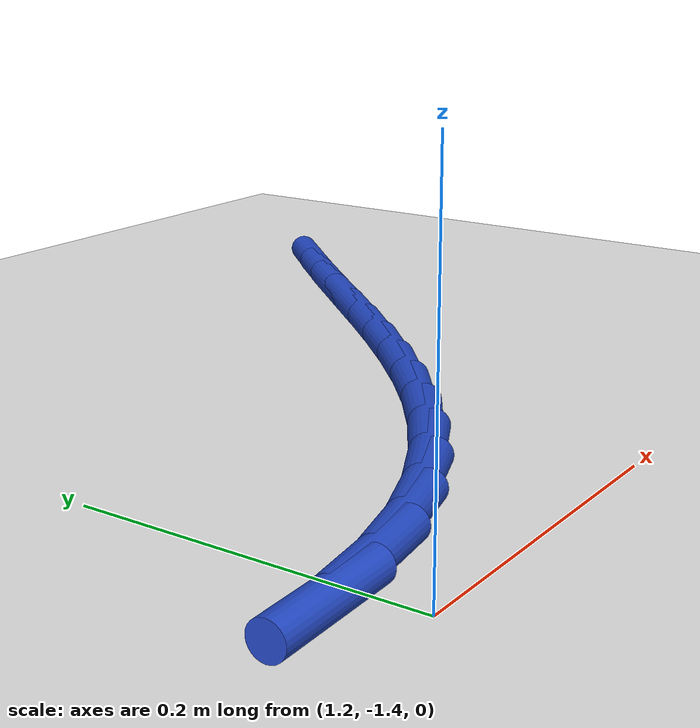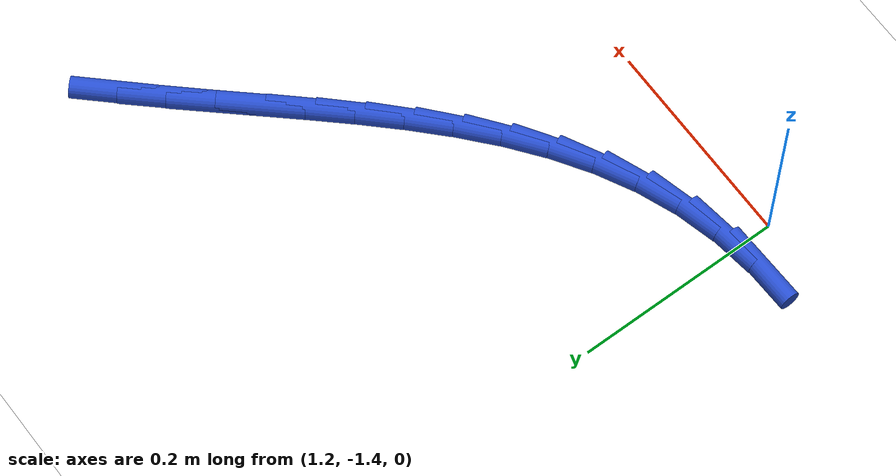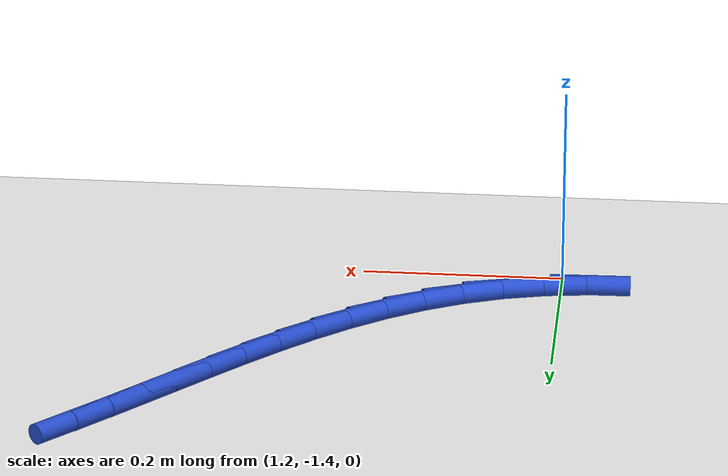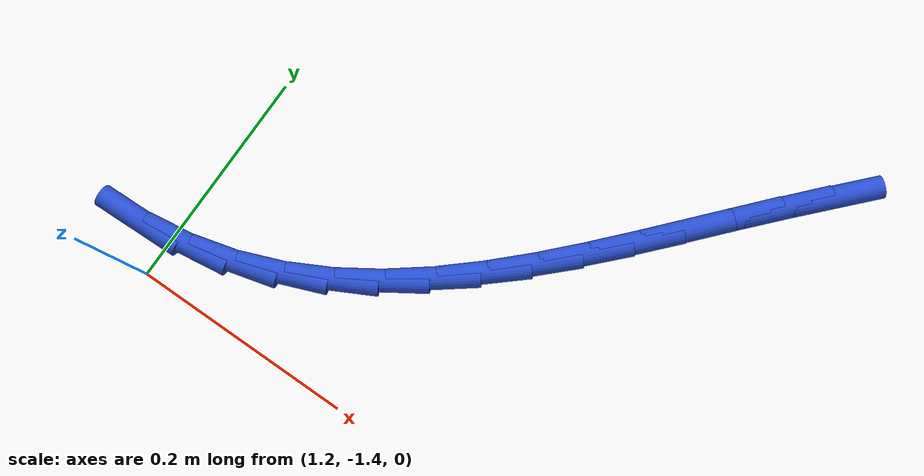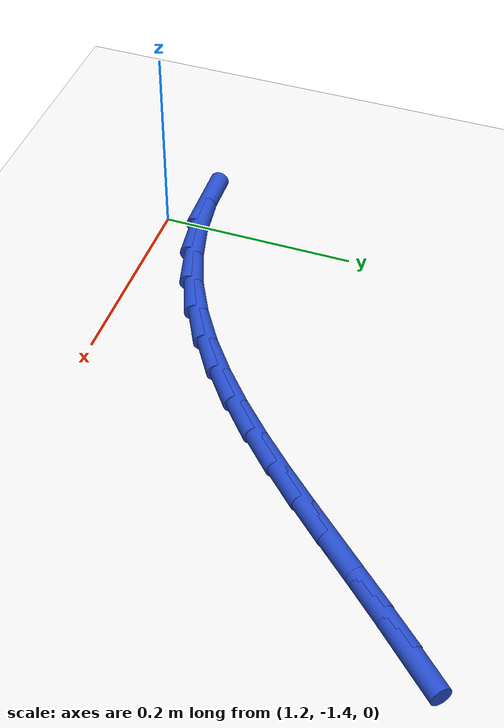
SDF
<sdf version="1.6">
 <world name="default">
  <model name="ground_plane">
   <static>1</static>
   <link name="link">
    <collision name="collision">
     <geometry><plane><normal>0 0 1</normal><size>100 100</size></plane></geometry>
     <surface><friction><ode><mu>100</mu><mu2>50</mu2></ode></friction></surface>
    </collision>
    <visual name="visual">
     <cast_shadows>0</cast_shadows>
     <geometry><plane><normal>0 0 1</normal><size>100 100</size></plane></geometry>
     <material>
      <script><uri>file://media/materials/scripts/gazebo.material</uri><name>Gazebo/WhiteGlow</name></script>
     </material>
    </visual>
   </link>
  </model>
  <model name="line">
   <link name="link_121">
    <pose>1.644661011423778 -1.0122961781609008 0.01 0 1.57 0.81928160764692</pose>
    <collision name="collision">
     <geometry><cylinder><radius>0.01</radius><length>0.08</length></cylinder></geometry>
    </collision>
    <visual name="visual">
     <material>
      <script><name>Gazebo/Blue</name><uri>file://media/materials/scripts/gazebo.material</uri></script>
     </material>
     <geometry><cylinder><radius>0.01</radius><length>0.08</length></cylinder></geometry>
    </visual>
   </link>
   <link name="link_122">
    <pose>1.6151971620273249 -1.0438275469231344 0.01 0 1.57 0.8330358349825612</pose>
    <collision name="collision">
     <geometry><cylinder><radius>0.01</radius><length>0.08</length></cylinder></geometry>
    </collision>
    <visual name="visual">
     <material>
      <script><name>Gazebo/Blue</name><uri>file://media/materials/scripts/gazebo.material</uri></script>
     </material>
     <geometry><cylinder><radius>0.01</radius><length>0.08</length></cylinder></geometry>
    </visual>
   </link>
   <link name="link_123">
    <pose>1.5859121770615907 -1.0760445622483499 0.01 0 1.57 0.8428960130972724</pose>
    <collision name="collision">
     <geometry><cylinder><radius>0.01</radius><length>0.08</length></cylinder></geometry>
    </collision>
    <visual name="visual">
     <material>
      <script><name>Gazebo/Blue</name><uri>file://media/materials/scripts/gazebo.material</uri></script>
     </material>
     <geometry><cylinder><radius>0.01</radius><length>0.08</length></cylinder></geometry>
    </visual>
   </link>
   <link name="link_124">
    <pose>1.5566816892599658 -1.1088456690457502 0.01 0 1.57 0.84249878439525</pose>
    <collision name="collision">
     <geometry><cylinder><radius>0.01</radius><length>0.08</length></cylinder></geometry>
    </collision>
    <visual name="visual">
     <material>
      <script><name>Gazebo/Blue</name><uri>file://media/materials/scripts/gazebo.material</uri></script>
     </material>
     <geometry><cylinder><radius>0.01</radius><length>0.08</length></cylinder></geometry>
    </visual>
   </link>
   <link name="link_125">
    <pose>1.5272870702102406 -1.1418045884846766 0.01 0 1.57 0.8301137871013893</pose>
    <collision name="collision">
     <geometry><cylinder><radius>0.01</radius><length>0.08</length></cylinder></geometry>
    </collision>
    <visual name="visual">
     <material>
      <script><name>Gazebo/Blue</name><uri>file://media/materials/scripts/gazebo.material</uri></script>
     </material>
     <geometry><cylinder><radius>0.01</radius><length>0.08</length></cylinder></geometry>
    </visual>
   </link>
   <link name="link_126">
    <pose>1.4974824922735226 -1.1744013421029407 0.01 0 1.57 0.8055680688839614</pose>
    <collision name="collision">
     <geometry><cylinder><radius>0.01</radius><length>0.08</length></cylinder></geometry>
    </collision>
    <visual name="visual">
     <material>
      <script><name>Gazebo/Blue</name><uri>file://media/materials/scripts/gazebo.material</uri></script>
     </material>
     <geometry><cylinder><radius>0.01</radius><length>0.08</length></cylinder></geometry>
    </visual>
   </link>
   <link name="link_127">
    <pose>1.4670221252086633 -1.2061159424737422 0.01 0 1.57 0.7683826000340719</pose>
    <collision name="collision">
     <geometry><cylinder><radius>0.01</radius><length>0.08</length></cylinder></geometry>
    </collision>
    <visual name="visual">
     <material>
      <script><name>Gazebo/Blue</name><uri>file://media/materials/scripts/gazebo.material</uri></script>
     </material>
     <geometry><cylinder><radius>0.01</radius><length>0.08</length></cylinder></geometry>
    </visual>
   </link>
   <link name="link_128">
    <pose>1.4356601387745145 -1.2364284021702836 0.01 0 1.57 0.7178635831809987</pose>
    <collision name="collision">
     <geometry><cylinder><radius>0.01</radius><length>0.08</length></cylinder></geometry>
    </collision>
    <visual name="visual">
     <material>
      <script><name>Gazebo/Blue</name><uri>file://media/materials/scripts/gazebo.material</uri></script>
     </material>
     <geometry><cylinder><radius>0.01</radius><length>0.08</length></cylinder></geometry>
    </visual>
   </link>
   <link name="link_129">
    <pose>1.403150702729927 -1.2648187337657661 0.01 0 1.57 0.6532673138674373</pose>
    <collision name="collision">
     <geometry><cylinder><radius>0.01</radius><length>0.08</length></cylinder></geometry>
    </collision>
    <visual name="visual">
     <material>
      <script><name>Gazebo/Blue</name><uri>file://media/materials/scripts/gazebo.material</uri></script>
     </material>
     <geometry><cylinder><radius>0.01</radius><length>0.08</length></cylinder></geometry>
    </visual>
   </link>
   <link name="link_130">
    <pose>1.3692479868337526 -1.290766949833391 0.01 0 1.57 0.5740759508122095</pose>
    <collision name="collision">
     <geometry><cylinder><radius>0.01</radius><length>0.08</length></cylinder></geometry>
    </collision>
    <visual name="visual">
     <material>
      <script><name>Gazebo/Blue</name><uri>file://media/materials/scripts/gazebo.material</uri></script>
     </material>
     <geometry><cylinder><radius>0.01</radius><length>0.08</length></cylinder></geometry>
    </visual>
   </link>
   <link name="link_131">
    <pose>1.3337061608448413 -1.3137530629463596 0.01 0 1.57 0.48040441377834575</pose>
    <collision name="collision">
     <geometry><cylinder><radius>0.01</radius><length>0.08</length></cylinder></geometry>
    </collision>
    <visual name="visual">
     <material>
      <script><name>Gazebo/Blue</name><uri>file://media/materials/scripts/gazebo.material</uri></script>
     </material>
     <geometry><cylinder><radius>0.01</radius><length>0.08</length></cylinder></geometry>
    </visual>
   </link>
   <link name="link_132">
    <pose>1.2962793945220465 -1.333257085677874 0.01 0 1.57 0.3734898475952952</pose>
    <collision name="collision">
     <geometry><cylinder><radius>0.01</radius><length>0.08</length></cylinder></geometry>
    </collision>
    <visual name="visual">
     <material>
      <script><name>Gazebo/Blue</name><uri>file://media/materials/scripts/gazebo.material</uri></script>
     </material>
     <geometry><cylinder><radius>0.01</radius><length>0.08</length></cylinder></geometry>
    </visual>
   </link>
   <link name="link_133">
    <pose>1.2567218576242187 -1.3487590306011348 0.01 0 1.57 0.25614648648220323</pose>
    <collision name="collision">
     <geometry><cylinder><radius>0.01</radius><length>0.08</length></cylinder></geometry>
    </collision>
    <visual name="visual">
     <material>
      <script><name>Gazebo/Blue</name><uri>file://media/materials/scripts/gazebo.material</uri></script>
     </material>
     <geometry><cylinder><radius>0.01</radius><length>0.08</length></cylinder></geometry>
    </visual>
   </link>
   <link name="link_134">
    <pose>1.2147911437298164 -1.35974066486204 0.01 0 1.57 0.13797361214676587</pose>
    <collision name="collision">
     <geometry><cylinder><radius>0.01</radius><length>0.08</length></cylinder></geometry>
    </collision>
    <visual name="visual">
     <material>
      <script><name>Gazebo/Blue</name><uri>file://media/materials/scripts/gazebo.material</uri></script>
     </material>
     <geometry><cylinder><radius>0.01</radius><length>0.08</length></cylinder></geometry>
    </visual>
   </link>
   <link name="link_135">
    <pose>1.1706170515566896 -1.3658744960805302 0.01 0 1.57 0.028902252749623148</pose>
    <collision name="collision">
     <geometry><cylinder><radius>0.01</radius><length>0.08</length></cylinder></geometry>
    </collision>
    <visual name="visual">
     <material>
      <script><name>Gazebo/Blue</name><uri>file://media/materials/scripts/gazebo.material</uri></script>
     </material>
     <geometry><cylinder><radius>0.01</radius><length>0.08</length></cylinder></geometry>
    </visual>
   </link>
  </model>
 </world>
</sdf>
